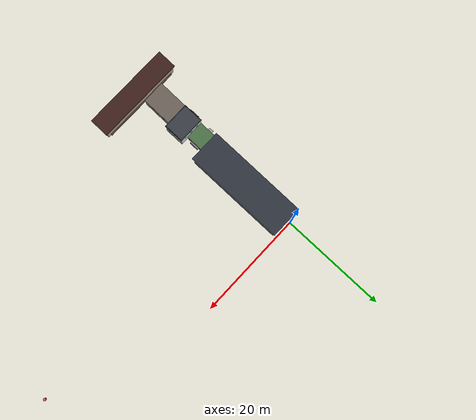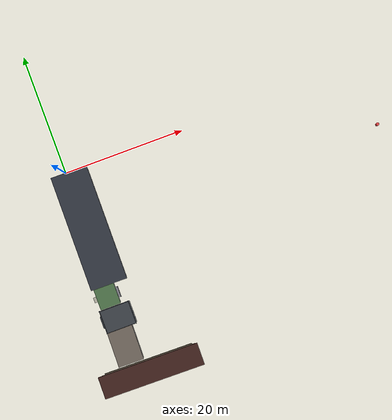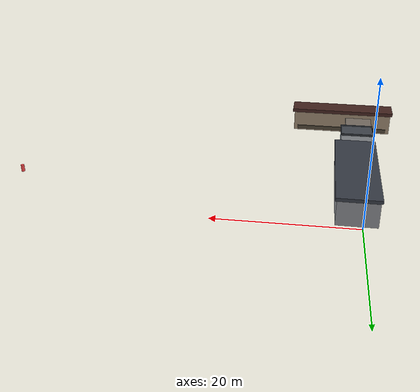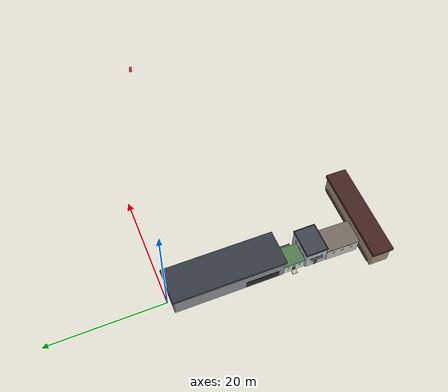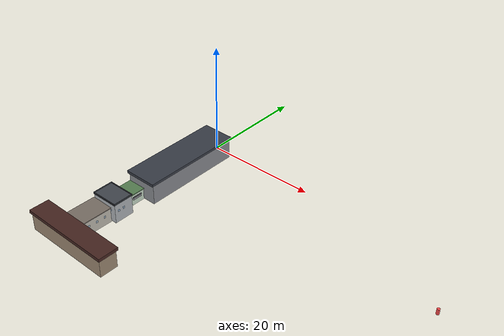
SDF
<sdf version="1.10">
 <world name="city_town_real_improved">
  <model name="house_3">
   <static>true</static>
   <pose>-0.420347356796265 -20.9060256958008 0 0 0 -1.57155994340436</pose>
   <link name="link">
    <collision name="body_col">
     <pose>0 0 1 0 0 0</pose>
     <geometry><box><size>3.52 3.2 2</size></box></geometry>
    </collision>
    <visual name="body_vis">
     <pose>0 0 1 0 0 0</pose>
     <geometry><box><size>3.52 3.2 2</size></box></geometry>
     <material>
      <ambient>0.779999971 0.860000014 0.779999971 1</ambient>
      <diffuse>0.779999971 0.860000014 0.779999971 1</diffuse>
      <specular>0.0799999982 0.0799999982 0.0799999982 1</specular>
     </material>
    </visual>
    <collision name="roof_col">
     <pose>0 0 2.07 0 0 0</pose>
     <geometry><box><size>3.68 3.36 0.14</size></box></geometry>
    </collision>
    <visual name="roof_vis">
     <pose>0 0 2.07 0 0 0</pose>
     <geometry><box><size>3.68 3.36 0.14</size></box></geometry>
     <material>
      <ambient>0.340000004 0.5 0.319999993 1</ambient>
      <diffuse>0.340000004 0.5 0.319999993 1</diffuse>
      <specular>0.0799999982 0.0799999982 0.0799999982 1</specular>
     </material>
    </visual>
    <visual name="door_vis">
     <pose>0 -1.616 0.48 0 0 0</pose>
     <geometry><box><size>0.52 0.04 0.96</size></box></geometry>
     <material>
      <ambient>0.319999993 0.219999999 0.159999996 1</ambient>
      <diffuse>0.319999993 0.219999999 0.159999996 1</diffuse>
      <specular>0.0799999982 0.0799999982 0.0799999982 1</specular>
     </material>
    </visual>
    <visual name="win_south_0">
     <pose>-0.9856 -1.612 1.24 0 0 0</pose>
     <geometry><box><size>0.34 0.032 0.4</size></box></geometry>
     <material>
      <ambient>0.550000012 0.720000029 0.879999995 0.550000012</ambient>
      <diffuse>0.550000012 0.720000029 0.879999995 0.550000012</diffuse>
      <specular>0.0799999982 0.0799999982 0.0799999982 1</specular>
      <transparency>0.35</transparency>
     </material>
    </visual>
    <visual name="win_south_1">
     <pose>0 -1.612 1.24 0 0 0</pose>
     <geometry><box><size>0.34 0.032 0.4</size></box></geometry>
     <material>
      <ambient>0.550000012 0.720000029 0.879999995 0.550000012</ambient>
      <diffuse>0.550000012 0.720000029 0.879999995 0.550000012</diffuse>
      <specular>0.0799999982 0.0799999982 0.0799999982 1</specular>
      <transparency>0.35</transparency>
     </material>
    </visual>
    <visual name="win_south_2">
     <pose>0.9856 -1.612 1.24 0 0 0</pose>
     <geometry><box><size>0.34 0.032 0.4</size></box></geometry>
     <material>
      <ambient>0.550000012 0.720000029 0.879999995 0.550000012</ambient>
      <diffuse>0.550000012 0.720000029 0.879999995 0.550000012</diffuse>
      <specular>0.0799999982 0.0799999982 0.0799999982 1</specular>
      <transparency>0.35</transparency>
     </material>
    </visual>
    <visual name="win_west_0">
     <pose>-1.772 -0.896 1.24 0 0 0</pose>
     <geometry><box><size>0.032 0.34 0.4</size></box></geometry>
     <material>
      <ambient>0.550000012 0.720000029 0.879999995 0.550000012</ambient>
      <diffuse>0.550000012 0.720000029 0.879999995 0.550000012</diffuse>
      <specular>0.0799999982 0.0799999982 0.0799999982 1</specular>
      <transparency>0.35</transparency>
     </material>
    </visual>
    <visual name="win_west_1">
     <pose>-1.772 0 1.24 0 0 0</pose>
     <geometry><box><size>0.032 0.34 0.4</size></box></geometry>
     <material>
      <ambient>0.550000012 0.720000029 0.879999995 0.550000012</ambient>
      <diffuse>0.550000012 0.720000029 0.879999995 0.550000012</diffuse>
      <specular>0.0799999982 0.0799999982 0.0799999982 1</specular>
      <transparency>0.35</transparency>
     </material>
    </visual>
    <visual name="win_east_0">
     <pose>1.772 -0.896 1.24 0 0 0</pose>
     <geometry><box><size>0.032 0.34 0.4</size></box></geometry>
     <material>
      <ambient>0.550000012 0.720000029 0.879999995 0.550000012</ambient>
      <diffuse>0.550000012 0.720000029 0.879999995 0.550000012</diffuse>
      <specular>0.0799999982 0.0799999982 0.0799999982 1</specular>
      <transparency>0.35</transparency>
     </material>
    </visual>
    <visual name="win_east_1">
     <pose>1.772 0 1.24 0 0 0</pose>
     <geometry><box><size>0.032 0.34 0.4</size></box></geometry>
     <material>
      <ambient>0.550000012 0.720000029 0.879999995 0.550000012</ambient>
      <diffuse>0.550000012 0.720000029 0.879999995 0.550000012</diffuse>
      <specular>0.0799999982 0.0799999982 0.0799999982 1</specular>
      <transparency>0.35</transparency>
     </material>
    </visual>
    <visual name="win_north_0">
     <pose>-0.9856 1.612 1.24 0 0 0</pose>
     <geometry><box><size>0.34 0.032 0.4</size></box></geometry>
     <material>
      <ambient>0.550000012 0.720000029 0.879999995 0.550000012</ambient>
      <diffuse>0.550000012 0.720000029 0.879999995 0.550000012</diffuse>
      <specular>0.0799999982 0.0799999982 0.0799999982 1</specular>
      <transparency>0.35</transparency>
     </material>
    </visual>
    <visual name="win_north_1">
     <pose>0 1.612 1.24 0 0 0</pose>
     <geometry><box><size>0.34 0.032 0.4</size></box></geometry>
     <material>
      <ambient>0.550000012 0.720000029 0.879999995 0.550000012</ambient>
      <diffuse>0.550000012 0.720000029 0.879999995 0.550000012</diffuse>
      <specular>0.0799999982 0.0799999982 0.0799999982 1</specular>
      <transparency>0.35</transparency>
     </material>
    </visual>
    <visual name="win_north_2">
     <pose>0.9856 1.612 1.24 0 0 0</pose>
     <geometry><box><size>0.34 0.032 0.4</size></box></geometry>
     <material>
      <ambient>0.550000012 0.720000029 0.879999995 0.550000012</ambient>
      <diffuse>0.550000012 0.720000029 0.879999995 0.550000012</diffuse>
      <specular>0.0799999982 0.0799999982 0.0799999982 1</specular>
      <transparency>0.35</transparency>
     </material>
    </visual>
    <collision name="porch_col">
     <pose>0 -2 0.072 0 0 0</pose>
     <geometry><box><size>0.88 0.72 0.144</size></box></geometry>
    </collision>
    <visual name="porch_vis">
     <pose>0 -2 0.072 0 0 0</pose>
     <geometry><box><size>0.88 0.72 0.144</size></box></geometry>
     <material>
      <ambient>0.769999981 0.75999999 0.699999988 1</ambient>
      <diffuse>0.769999981 0.75999999 0.699999988 1</diffuse>
      <specular>0.0799999982 0.0799999982 0.0799999982 1</specular>
     </material>
    </visual>
    <visual name="balcony">
     <pose>0 1.88 1.44 0 0 0</pose>
     <geometry><box><size>1.76 0.44 0.06</size></box></geometry>
     <material>
      <ambient>0.550000012 0.550000012 0.579999983 1</ambient>
      <diffuse>0.550000012 0.550000012 0.579999983 1</diffuse>
      <specular>0.0799999982 0.0799999982 0.0799999982 1</specular>
     </material>
    </visual>
    <visual name="balustrade">
     <pose>0 2.072 1.84 0 0 0</pose>
     <geometry><box><size>1.76 0.032 0.32</size></box></geometry>
     <material>
      <ambient>0.300000012 0.300000012 0.319999993 1</ambient>
      <diffuse>0.300000012 0.300000012 0.319999993 1</diffuse>
      <specular>0.0799999982 0.0799999982 0.0799999982 1</specular>
     </material>
    </visual>
    <inertial>
     <mass>1</mass>
     <inertia><ixx>1</ixx><ixy>0</ixy><ixz>0</ixz><iyy>1</iyy><iyz>0</iyz><izz>1</izz></inertia>
    </inertial>
   </link>
  </model>
  <model name="warehouse_east">
   <static>true</static>
   <pose>-0.351175260543823 -29.409130859375 0 0 0 -1.58832997653702</pose>
   <link name="link">
    <collision name="body_col">
     <pose>0 0 1.3 0 0 0</pose>
     <geometry><box><size>5.6 4 2.6</size></box></geometry>
    </collision>
    <visual name="body_vis">
     <pose>0 0 1.3 0 0 0</pose>
     <geometry><box><size>5.6 4 2.6</size></box></geometry>
     <material>
      <ambient>0.75999999 0.74000001 0.699999988 1</ambient>
      <diffuse>0.75999999 0.74000001 0.699999988 1</diffuse>
      <specular>0.0799999982 0.0799999982 0.0799999982 1</specular>
     </material>
    </visual>
    <collision name="roof_col">
     <pose>0 0 2.67 0 0 0</pose>
     <geometry><box><size>5.76 4.16 0.14</size></box></geometry>
    </collision>
    <visual name="roof_vis">
     <pose>0 0 2.67 0 0 0</pose>
     <geometry><box><size>5.76 4.16 0.14</size></box></geometry>
     <material>
      <ambient>0.479999989 0.439999998 0.400000006 1</ambient>
      <diffuse>0.479999989 0.439999998 0.400000006 1</diffuse>
      <specular>0.0799999982 0.0799999982 0.0799999982 1</specular>
     </material>
    </visual>
    <visual name="door_vis">
     <pose>-2.816 0 0.48 0 0 0</pose>
     <geometry><box><size>0.04 0.52 0.96</size></box></geometry>
     <material>
      <ambient>0.319999993 0.219999999 0.159999996 1</ambient>
      <diffuse>0.319999993 0.219999999 0.159999996 1</diffuse>
      <specular>0.0799999982 0.0799999982 0.0799999982 1</specular>
     </material>
    </visual>
    <visual name="win_west_0">
     <pose>-2.812 -1.12 1.612 0 0 0</pose>
     <geometry><box><size>0.032 0.34 0.4</size></box></geometry>
     <material>
      <ambient>0.550000012 0.720000029 0.879999995 0.550000012</ambient>
      <diffuse>0.550000012 0.720000029 0.879999995 0.550000012</diffuse>
      <specular>0.0799999982 0.0799999982 0.0799999982 1</specular>
      <transparency>0.35</transparency>
     </material>
    </visual>
    <visual name="win_west_1">
     <pose>-2.812 0 1.612 0 0 0</pose>
     <geometry><box><size>0.032 0.34 0.4</size></box></geometry>
     <material>
      <ambient>0.550000012 0.720000029 0.879999995 0.550000012</ambient>
      <diffuse>0.550000012 0.720000029 0.879999995 0.550000012</diffuse>
      <specular>0.0799999982 0.0799999982 0.0799999982 1</specular>
      <transparency>0.35</transparency>
     </material>
    </visual>
    <visual name="win_west_2">
     <pose>-2.812 1.12 1.612 0 0 0</pose>
     <geometry><box><size>0.032 0.34 0.4</size></box></geometry>
     <material>
      <ambient>0.550000012 0.720000029 0.879999995 0.550000012</ambient>
      <diffuse>0.550000012 0.720000029 0.879999995 0.550000012</diffuse>
      <specular>0.0799999982 0.0799999982 0.0799999982 1</specular>
      <transparency>0.35</transparency>
     </material>
    </visual>
    <visual name="win_south_0">
     <pose>-1.568 -2.012 1.612 0 0 0</pose>
     <geometry><box><size>0.34 0.032 0.4</size></box></geometry>
     <material>
      <ambient>0.550000012 0.720000029 0.879999995 0.550000012</ambient>
      <diffuse>0.550000012 0.720000029 0.879999995 0.550000012</diffuse>
      <specular>0.0799999982 0.0799999982 0.0799999982 1</specular>
      <transparency>0.35</transparency>
     </material>
    </visual>
    <visual name="win_south_1">
     <pose>0 -2.012 1.612 0 0 0</pose>
     <geometry><box><size>0.34 0.032 0.4</size></box></geometry>
     <material>
      <ambient>0.550000012 0.720000029 0.879999995 0.550000012</ambient>
      <diffuse>0.550000012 0.720000029 0.879999995 0.550000012</diffuse>
      <specular>0.0799999982 0.0799999982 0.0799999982 1</specular>
      <transparency>0.35</transparency>
     </material>
    </visual>
    <visual name="win_south_2">
     <pose>1.568 -2.012 1.612 0 0 0</pose>
     <geometry><box><size>0.34 0.032 0.4</size></box></geometry>
     <material>
      <ambient>0.550000012 0.720000029 0.879999995 0.550000012</ambient>
      <diffuse>0.550000012 0.720000029 0.879999995 0.550000012</diffuse>
      <specular>0.0799999982 0.0799999982 0.0799999982 1</specular>
      <transparency>0.35</transparency>
     </material>
    </visual>
    <visual name="win_east_0">
     <pose>2.812 -1.12 1.612 0 0 0</pose>
     <geometry><box><size>0.032 0.34 0.4</size></box></geometry>
     <material>
      <ambient>0.550000012 0.720000029 0.879999995 0.550000012</ambient>
      <diffuse>0.550000012 0.720000029 0.879999995 0.550000012</diffuse>
      <specular>0.0799999982 0.0799999982 0.0799999982 1</specular>
      <transparency>0.35</transparency>
     </material>
    </visual>
    <visual name="win_east_1">
     <pose>2.812 0 1.612 0 0 0</pose>
     <geometry><box><size>0.032 0.34 0.4</size></box></geometry>
     <material>
      <ambient>0.550000012 0.720000029 0.879999995 0.550000012</ambient>
      <diffuse>0.550000012 0.720000029 0.879999995 0.550000012</diffuse>
      <specular>0.0799999982 0.0799999982 0.0799999982 1</specular>
      <transparency>0.35</transparency>
     </material>
    </visual>
    <visual name="win_north_0">
     <pose>-1.568 2.012 1.612 0 0 0</pose>
     <geometry><box><size>0.34 0.032 0.4</size></box></geometry>
     <material>
      <ambient>0.550000012 0.720000029 0.879999995 0.550000012</ambient>
      <diffuse>0.550000012 0.720000029 0.879999995 0.550000012</diffuse>
      <specular>0.0799999982 0.0799999982 0.0799999982 1</specular>
      <transparency>0.35</transparency>
     </material>
    </visual>
    <visual name="win_north_1">
     <pose>0 2.012 1.612 0 0 0</pose>
     <geometry><box><size>0.34 0.032 0.4</size></box></geometry>
     <material>
      <ambient>0.550000012 0.720000029 0.879999995 0.550000012</ambient>
      <diffuse>0.550000012 0.720000029 0.879999995 0.550000012</diffuse>
      <specular>0.0799999982 0.0799999982 0.0799999982 1</specular>
      <transparency>0.35</transparency>
     </material>
    </visual>
    <visual name="win_north_2">
     <pose>1.568 2.012 1.612 0 0 0</pose>
     <geometry><box><size>0.34 0.032 0.4</size></box></geometry>
     <material>
      <ambient>0.550000012 0.720000029 0.879999995 0.550000012</ambient>
      <diffuse>0.550000012 0.720000029 0.879999995 0.550000012</diffuse>
      <specular>0.0799999982 0.0799999982 0.0799999982 1</specular>
      <transparency>0.35</transparency>
     </material>
    </visual>
    <inertial>
     <mass>1</mass>
     <inertia><ixx>1</ixx><ixy>0</ixy><ixz>0</ixz><iyy>1</iyy><iyz>0</iyz><izz>1</izz></inertia>
    </inertial>
   </link>
  </model>
  <model name="market_fence">
   <static>true</static>
   <pose>11.6 -18.4 0 0 0 0</pose>
   <link name="link">
    <inertial>
     <mass>1</mass>
     <inertia><ixx>1</ixx><ixy>0</ixy><ixz>0</ixz><iyy>1</iyy><iyz>0</iyz><izz>1</izz></inertia>
    </inertial>
    <link name="link">
     <collision name="c1">
      <pose>0 1.92 0.24 0 0 0</pose>
      <geometry><box><size>4.8 0.048 0.48</size></box></geometry>
     </collision>
     <visual name="v1">
      <pose>0 1.92 0.24 0 0 0</pose>
      <geometry><box><size>4.8 0.048 0.48</size></box></geometry>
      <material>
       <ambient>0.400 0.400 0.420 1.000</ambient>
       <diffuse>0.400 0.400 0.420 1.000</diffuse>
       <specular>0.08 0.08 0.08 1</specular>
      </material>
     </visual>
     <collision name="c2">
      <pose>0 -1.92 0.24 0 0 0</pose>
      <geometry><box><size>4.8 0.048 0.48</size></box></geometry>
     </collision>
     <visual name="v2">
      <pose>0 -1.92 0.24 0 0 0</pose>
      <geometry><box><size>4.8 0.048 0.48</size></box></geometry>
      <material>
       <ambient>0.400 0.400 0.420 1.000</ambient>
       <diffuse>0.400 0.400 0.420 1.000</diffuse>
       <specular>0.08 0.08 0.08 1</specular>
      </material>
     </visual>
    </link>
   </link>
  </model>
  <model name="gallery_long_rowhouse_strip">
   <static>true</static>
   <pose>2.22983207702637 -34.4648803710937 0 0 0 -0.0139955215584395</pose>
   <link name="body">
    <collision name="collision">
     <pose>0 0 1.6 0 0 0</pose>
     <geometry><box><size>16 3.2 3.2</size></box></geometry>
    </collision>
    <visual name="main">
     <pose>0 0 1.6 0 0 0</pose>
     <geometry><box><size>16 3.2 3.2</size></box></geometry>
     <material>
      <ambient>0.620000005 0.540000021 0.449999988 1</ambient>
      <diffuse>0.620000005 0.540000021 0.449999988 1</diffuse>
      <specular>0.0500000007 0.0500000007 0.0500000007 1</specular>
     </material>
    </visual>
    <visual name="roof">
     <pose>0 0 3.48 0 0 0</pose>
     <geometry><box><size>16.6 3.6 0.56</size></box></geometry>
     <material>
      <ambient>0.280000001 0.150000006 0.129999995 1</ambient>
      <diffuse>0.280000001 0.150000006 0.129999995 1</diffuse>
      <specular>0.0399999991 0.0399999991 0.0399999991 1</specular>
     </material>
    </visual>
    <visual name="porch_line">
     <pose>0 1.68 0.56 0 0 0</pose>
     <geometry><box><size>14.8 0.28 0.56</size></box></geometry>
     <material>
      <ambient>0.319999993 0.280000001 0.219999999 1</ambient>
      <diffuse>0.319999993 0.280000001 0.219999999 1</diffuse>
      <specular>0.0299999993 0.0299999993 0.0299999993 1</specular>
     </material>
    </visual>
    <inertial>
     <mass>1</mass>
     <inertia><ixx>1</ixx><ixy>0</ixy><ixz>0</ixz><iyy>1</iyy><iyz>0</iyz><izz>1</izz></inertia>
    </inertial>
   </link>
  </model>
  <model name="gallery_long_warehouse_2_1">
   <static>true</static>
   <pose>0.729167032241821 -9.81719970703125 0 0 0 1.56529000278796</pose>
   <link name="body">
    <collision name="collision">
     <pose>0 0 1.8 0 0 0</pose>
     <geometry><box><size>18.4 5.6 3.6</size></box></geometry>
    </collision>
    <visual name="main">
     <pose>0 0 1.8 0 0 0</pose>
     <geometry><box><size>18.4 5.6 3.6</size></box></geometry>
     <material>
      <ambient>0.540000021 0.550000012 0.569999993 1</ambient>
      <diffuse>0.540000021 0.550000012 0.569999993 1</diffuse>
      <specular>0.0500000007 0.0500000007 0.0500000007 1</specular>
     </material>
    </visual>
    <visual name="roof">
     <pose>0 0 3.88 0 0 0</pose>
     <geometry><box><size>19 6 0.48</size></box></geometry>
     <material>
      <ambient>0.219999999 0.239999995 0.280000001 1</ambient>
      <diffuse>0.219999999 0.239999995 0.280000001 1</diffuse>
      <specular>0.0399999991 0.0399999991 0.0399999991 1</specular>
     </material>
    </visual>
    <visual name="loading_bays">
     <pose>-5.6 2.84 0.96 0 0 0</pose>
     <geometry><box><size>5.6 0.08 1.44</size></box></geometry>
     <material>
      <ambient>0.150000006 0.170000002 0.180000007 1</ambient>
      <diffuse>0.150000006 0.170000002 0.180000007 1</diffuse>
      <specular>0.0199999996 0.0199999996 0.0199999996 1</specular>
     </material>
    </visual>
    <inertial>
     <mass>1</mass>
     <inertia><ixx>1</ixx><ixy>0</ixy><ixz>0</ixz><iyy>1</iyy><iyz>0</iyz><izz>1</izz></inertia>
    </inertial>
   </link>
  </model>
  <model name="office_east_3">
   <static>true</static>
   <pose>0.161051595211029 -24.6566528320313 0 0 0 0</pose>
   <link name="link">
    <collision name="body_col">
     <pose>0 0 1.72 0 0 0</pose>
     <geometry><box><size>4.8 3.6 3.44</size></box></geometry>
    </collision>
    <visual name="body_vis">
     <pose>0 0 1.72 0 0 0</pose>
     <geometry><box><size>4.8 3.6 3.44</size></box></geometry>
     <material>
      <ambient>0.689999998 0.709999979 0.730000019 1</ambient>
      <diffuse>0.689999998 0.709999979 0.730000019 1</diffuse>
      <specular>0.0799999982 0.0799999982 0.0799999982 1</specular>
     </material>
    </visual>
    <collision name="roof_col">
     <pose>0 0 3.51 0 0 0</pose>
     <geometry><box><size>4.96 3.76 0.14</size></box></geometry>
    </collision>
    <visual name="roof_vis">
     <pose>0 0 3.51 0 0 0</pose>
     <geometry><box><size>4.96 3.76 0.14</size></box></geometry>
     <material>
      <ambient>0.25999999 0.280000001 0.310000002 1</ambient>
      <diffuse>0.25999999 0.280000001 0.310000002 1</diffuse>
      <specular>0.0799999982 0.0799999982 0.0799999982 1</specular>
     </material>
    </visual>
    <visual name="p1_vis">
     <pose>0 1.836 3.668 0 0 0</pose>
     <geometry><box><size>5.02 0.072 0.18</size></box></geometry>
     <material>
      <ambient>0.25999999 0.280000001 0.310000002 1</ambient>
      <diffuse>0.25999999 0.280000001 0.310000002 1</diffuse>
      <specular>0.0799999982 0.0799999982 0.0799999982 1</specular>
     </material>
    </visual>
    <visual name="p2_vis">
     <pose>0 -1.836 3.668 0 0 0</pose>
     <geometry><box><size>5.02 0.072 0.18</size></box></geometry>
     <material>
      <ambient>0.25999999 0.280000001 0.310000002 1</ambient>
      <diffuse>0.25999999 0.280000001 0.310000002 1</diffuse>
      <specular>0.0799999982 0.0799999982 0.0799999982 1</specular>
     </material>
    </visual>
    <visual name="p3_vis">
     <pose>2.436 0 3.668 0 0 0</pose>
     <geometry><box><size>0.072 3.82 0.18</size></box></geometry>
     <material>
      <ambient>0.25999999 0.280000001 0.310000002 1</ambient>
      <diffuse>0.25999999 0.280000001 0.310000002 1</diffuse>
      <specular>0.0799999982 0.0799999982 0.0799999982 1</specular>
     </material>
    </visual>
    <visual name="p4_vis">
     <pose>-2.436 0 3.668 0 0 0</pose>
     <geometry><box><size>0.072 3.82 0.18</size></box></geometry>
     <material>
      <ambient>0.25999999 0.280000001 0.310000002 1</ambient>
      <diffuse>0.25999999 0.280000001 0.310000002 1</diffuse>
      <specular>0.0799999982 0.0799999982 0.0799999982 1</specular>
     </material>
    </visual>
    <visual name="door_vis">
     <pose>-2.416 0 0.48 0 0 0</pose>
     <geometry><box><size>0.04 0.52 0.96</size></box></geometry>
     <material>
      <ambient>0.319999993 0.219999999 0.159999996 1</ambient>
      <diffuse>0.319999993 0.219999999 0.159999996 1</diffuse>
      <specular>0.0799999982 0.0799999982 0.0799999982 1</specular>
     </material>
    </visual>
    <visual name="win_west_0">
     <pose>-2.412 -1.008 2.1328 0 0 0</pose>
     <geometry><box><size>0.032 0.34 0.4</size></box></geometry>
     <material>
      <ambient>0.550000012 0.720000029 0.879999995 0.550000012</ambient>
      <diffuse>0.550000012 0.720000029 0.879999995 0.550000012</diffuse>
      <specular>0.0799999982 0.0799999982 0.0799999982 1</specular>
      <transparency>0.35</transparency>
     </material>
    </visual>
    <visual name="win_west_1">
     <pose>-2.412 0 2.1328 0 0 0</pose>
     <geometry><box><size>0.032 0.34 0.4</size></box></geometry>
     <material>
      <ambient>0.550000012 0.720000029 0.879999995 0.550000012</ambient>
      <diffuse>0.550000012 0.720000029 0.879999995 0.550000012</diffuse>
      <specular>0.0799999982 0.0799999982 0.0799999982 1</specular>
      <transparency>0.35</transparency>
     </material>
    </visual>
    <visual name="win_west_2">
     <pose>-2.412 1.008 2.1328 0 0 0</pose>
     <geometry><box><size>0.032 0.34 0.4</size></box></geometry>
     <material>
      <ambient>0.550000012 0.720000029 0.879999995 0.550000012</ambient>
      <diffuse>0.550000012 0.720000029 0.879999995 0.550000012</diffuse>
      <specular>0.0799999982 0.0799999982 0.0799999982 1</specular>
      <transparency>0.35</transparency>
     </material>
    </visual>
    <visual name="win_south_0">
     <pose>-1.344 -1.812 2.1328 0 0 0</pose>
     <geometry><box><size>0.34 0.032 0.4</size></box></geometry>
     <material>
      <ambient>0.550000012 0.720000029 0.879999995 0.550000012</ambient>
      <diffuse>0.550000012 0.720000029 0.879999995 0.550000012</diffuse>
      <specular>0.0799999982 0.0799999982 0.0799999982 1</specular>
      <transparency>0.35</transparency>
     </material>
    </visual>
    <visual name="win_south_1">
     <pose>0 -1.812 2.1328 0 0 0</pose>
     <geometry><box><size>0.34 0.032 0.4</size></box></geometry>
     <material>
      <ambient>0.550000012 0.720000029 0.879999995 0.550000012</ambient>
      <diffuse>0.550000012 0.720000029 0.879999995 0.550000012</diffuse>
      <specular>0.0799999982 0.0799999982 0.0799999982 1</specular>
      <transparency>0.35</transparency>
     </material>
    </visual>
    <visual name="win_south_2">
     <pose>1.344 -1.812 2.1328 0 0 0</pose>
     <geometry><box><size>0.34 0.032 0.4</size></box></geometry>
     <material>
      <ambient>0.550000012 0.720000029 0.879999995 0.550000012</ambient>
      <diffuse>0.550000012 0.720000029 0.879999995 0.550000012</diffuse>
      <specular>0.0799999982 0.0799999982 0.0799999982 1</specular>
      <transparency>0.35</transparency>
     </material>
    </visual>
    <visual name="win_east_0">
     <pose>2.412 -1.008 2.1328 0 0 0</pose>
     <geometry><box><size>0.032 0.34 0.4</size></box></geometry>
     <material>
      <ambient>0.550000012 0.720000029 0.879999995 0.550000012</ambient>
      <diffuse>0.550000012 0.720000029 0.879999995 0.550000012</diffuse>
      <specular>0.0799999982 0.0799999982 0.0799999982 1</specular>
      <transparency>0.35</transparency>
     </material>
    </visual>
    <visual name="win_east_1">
     <pose>2.412 0 2.1328 0 0 0</pose>
     <geometry><box><size>0.032 0.34 0.4</size></box></geometry>
     <material>
      <ambient>0.550000012 0.720000029 0.879999995 0.550000012</ambient>
      <diffuse>0.550000012 0.720000029 0.879999995 0.550000012</diffuse>
      <specular>0.0799999982 0.0799999982 0.0799999982 1</specular>
      <transparency>0.35</transparency>
     </material>
    </visual>
    <visual name="win_north_0">
     <pose>-1.344 1.812 2.1328 0 0 0</pose>
     <geometry><box><size>0.34 0.032 0.4</size></box></geometry>
     <material>
      <ambient>0.550000012 0.720000029 0.879999995 0.550000012</ambient>
      <diffuse>0.550000012 0.720000029 0.879999995 0.550000012</diffuse>
      <specular>0.0799999982 0.0799999982 0.0799999982 1</specular>
      <transparency>0.35</transparency>
     </material>
    </visual>
    <visual name="win_north_1">
     <pose>0 1.812 2.1328 0 0 0</pose>
     <geometry><box><size>0.34 0.032 0.4</size></box></geometry>
     <material>
      <ambient>0.550000012 0.720000029 0.879999995 0.550000012</ambient>
      <diffuse>0.550000012 0.720000029 0.879999995 0.550000012</diffuse>
      <specular>0.0799999982 0.0799999982 0.0799999982 1</specular>
      <transparency>0.35</transparency>
     </material>
    </visual>
    <visual name="win_north_2">
     <pose>1.344 1.812 2.1328 0 0 0</pose>
     <geometry><box><size>0.34 0.032 0.4</size></box></geometry>
     <material>
      <ambient>0.550000012 0.720000029 0.879999995 0.550000012</ambient>
      <diffuse>0.550000012 0.720000029 0.879999995 0.550000012</diffuse>
      <specular>0.0799999982 0.0799999982 0.0799999982 1</specular>
      <transparency>0.35</transparency>
     </material>
    </visual>
    <visual name="awning">
     <pose>-2.62 0 2.1328 0 0 0</pose>
     <geometry><box><size>0.36 1.98 0.064</size></box></geometry>
     <material>
      <ambient>0.25999999 0.280000001 0.310000002 1</ambient>
      <diffuse>0.25999999 0.280000001 0.310000002 1</diffuse>
      <specular>0.0799999982 0.0799999982 0.0799999982 1</specular>
     </material>
    </visual>
    <inertial>
     <mass>1</mass>
     <inertia><ixx>1</ixx><ixy>0</ixy><ixz>0</ixz><iyy>1</iyy><iyz>0</iyz><izz>1</izz></inertia>
    </inertial>
   </link>
  </model>
  <model name="moving_cyl_1">
   <pose>50 -10 0.5 0 0 0</pose>
   <link name="link">
    <inertial>
     <mass>5.0</mass>
     <inertia><ixx>0.5</ixx><iyy>0.5</iyy><izz>0.5</izz><ixy>0</ixy><ixz>0</ixz><iyz>0</iyz></inertia>
    </inertial>
    <collision name="col">
     <geometry><cylinder><radius>0.25</radius><length>1.0</length></cylinder></geometry>
    </collision>
    <visual name="vis">
     <geometry><cylinder><radius>0.25</radius><length>1.0</length></cylinder></geometry>
     <material><ambient>1 0.3 0.3 1</ambient><diffuse>1 0.3 0.3 1</diffuse></material>
    </visual>
   </link>
  </model>
 </world>
</sdf>
